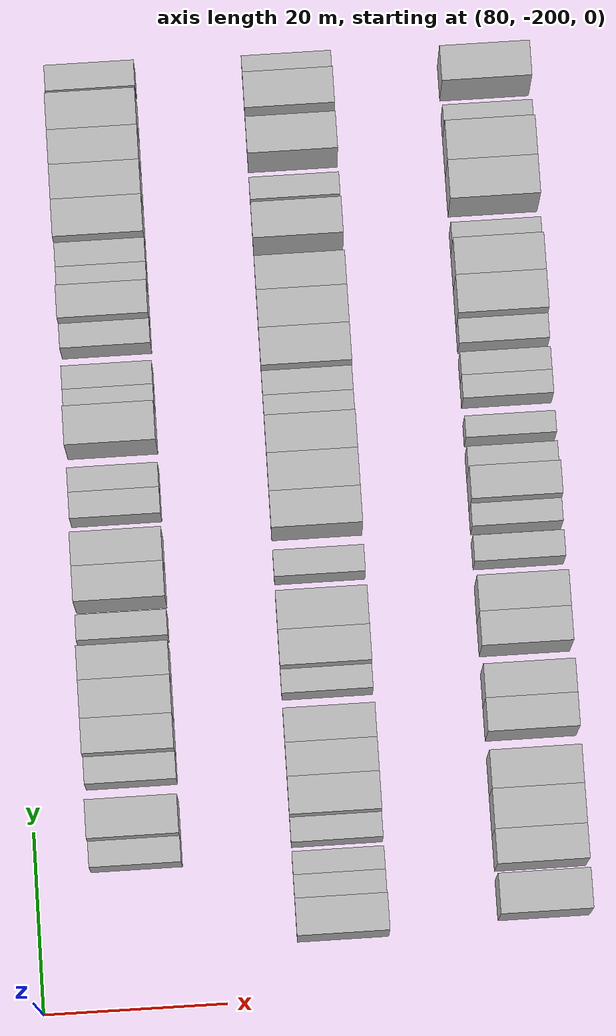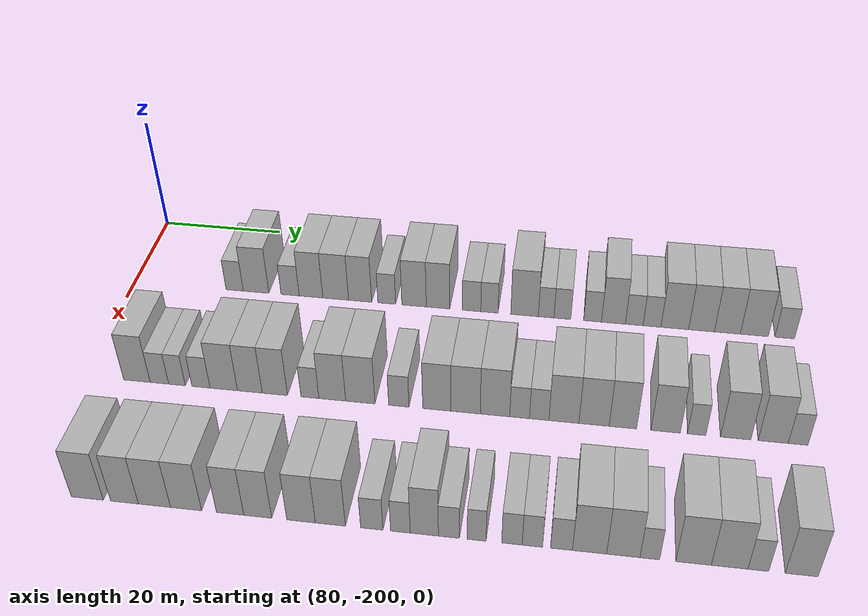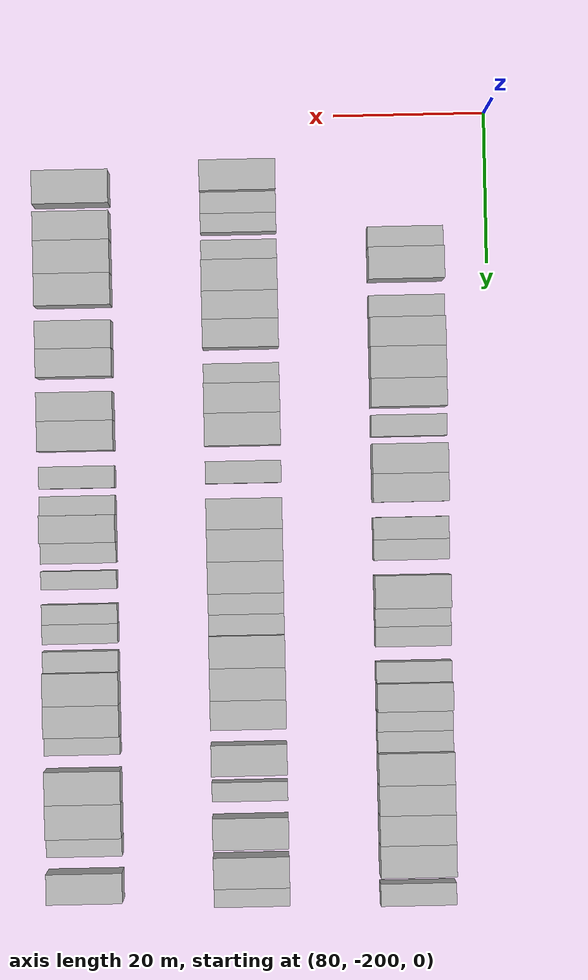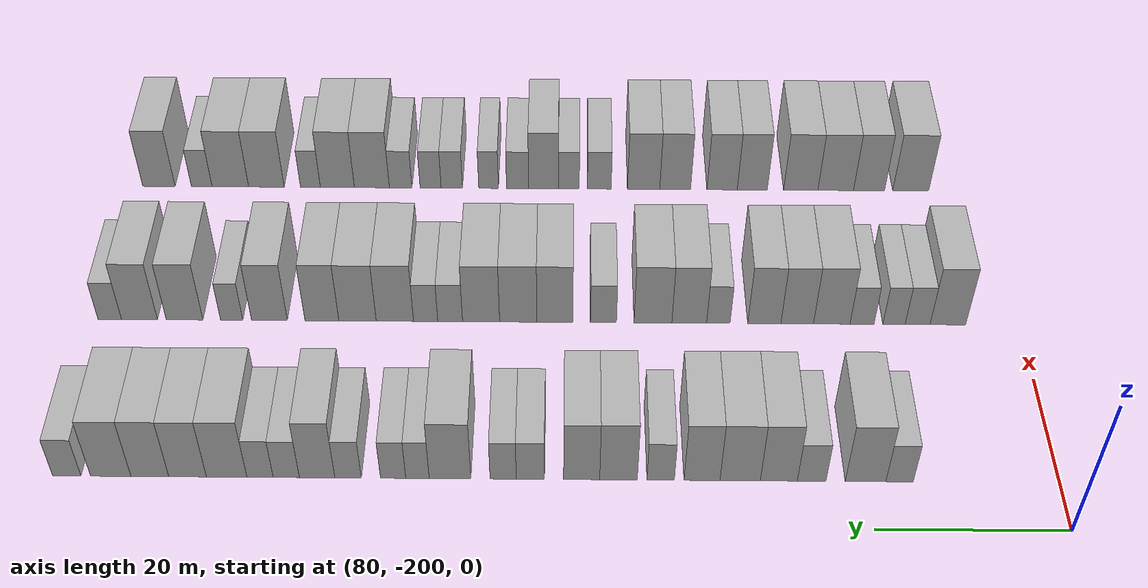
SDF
<sdf version="1.6">
 <world name="default">
  <model name="building_606">
   <static>1</static>
   <pose>91.0000 -183.3609 0 0.000000 0.000000 0.000000</pose>
   <link name="link">
    <pose>0 0 3.00 0 0 0</pose>
    <collision name="collision"><geometry><box><size>10.0000 2.8439 6.0000</size></box></geometry></collision>
    <visual name="visual">
     <cast_shadows>0</cast_shadows>
     <geometry><box><size>10.0000 2.8439 6.0000</size></box></geometry>
     <material>
      <script>
       <uri>model://HANNAS_wall/materials/scripts</uri>
       <uri>model://HANNAS_wall/materials/textures</uri>
       <name>vrc/HANNAS_wall</name>
      </script>
     </material>
    </visual>
   </link>
  </model>
  <model name="building_607">
   <static>1</static>
   <pose>91.0000 -179.8262 0 0.000000 0.000000 0.000000</pose>
   <link name="link">
    <pose>0 0 4.50 0 0 0</pose>
    <collision name="collision"><geometry><box><size>10.0000 4.2256 9.0000</size></box></geometry></collision>
    <visual name="visual">
     <cast_shadows>0</cast_shadows>
     <geometry><box><size>10.0000 4.2256 9.0000</size></box></geometry>
     <material>
      <script>
       <uri>model://HANNAS_wall/materials/scripts</uri>
       <uri>model://HANNAS_wall/materials/textures</uri>
       <name>vrc/HANNAS_wall</name>
      </script>
     </material>
    </visual>
   </link>
  </model>
  <model name="building_608">
   <static>1</static>
   <pose>91.0000 -174.2258 0 0.000000 0.000000 0.000000</pose>
   <link name="link">
    <pose>0 0 3.00 0 0 0</pose>
    <collision name="collision"><geometry><box><size>10.0000 2.9751 6.0000</size></box></geometry></collision>
    <visual name="visual">
     <cast_shadows>0</cast_shadows>
     <geometry><box><size>10.0000 2.9751 6.0000</size></box></geometry>
     <material>
      <script>
       <uri>model://HANNAS_wall/materials/scripts</uri>
       <uri>model://HANNAS_wall/materials/textures</uri>
       <name>vrc/HANNAS_wall</name>
      </script>
     </material>
    </visual>
   </link>
  </model>
  <model name="building_609">
   <static>1</static>
   <pose>91.0000 -170.8117 0 0.000000 0.000000 0.000000</pose>
   <link name="link">
    <pose>0 0 4.50 0 0 0</pose>
    <collision name="collision"><geometry><box><size>10.0000 3.8531 9.0000</size></box></geometry></collision>
    <visual name="visual">
     <cast_shadows>0</cast_shadows>
     <geometry><box><size>10.0000 3.8531 9.0000</size></box></geometry>
     <material>
      <script>
       <uri>model://HANNAS_wall/materials/scripts</uri>
       <uri>model://HANNAS_wall/materials/textures</uri>
       <name>vrc/HANNAS_wall</name>
      </script>
     </material>
    </visual>
   </link>
  </model>
  <model name="building_610">
   <static>1</static>
   <pose>91.0000 -166.7874 0 0.000000 0.000000 0.000000</pose>
   <link name="link">
    <pose>0 0 4.50 0 0 0</pose>
    <collision name="collision"><geometry><box><size>10.0000 4.1956 9.0000</size></box></geometry></collision>
    <visual name="visual">
     <cast_shadows>0</cast_shadows>
     <geometry><box><size>10.0000 4.1956 9.0000</size></box></geometry>
     <material>
      <script>
       <uri>model://HANNAS_wall/materials/scripts</uri>
       <uri>model://HANNAS_wall/materials/textures</uri>
       <name>vrc/HANNAS_wall</name>
      </script>
     </material>
    </visual>
   </link>
  </model>
  <model name="building_611">
   <static>1</static>
   <pose>91.0000 -162.8176 0 0.000000 0.000000 0.000000</pose>
   <link name="link">
    <pose>0 0 4.50 0 0 0</pose>
    <collision name="collision"><geometry><box><size>10.0000 3.7439 9.0000</size></box></geometry></collision>
    <visual name="visual">
     <cast_shadows>0</cast_shadows>
     <geometry><box><size>10.0000 3.7439 9.0000</size></box></geometry>
     <material>
      <script>
       <uri>model://HANNAS_wall/materials/scripts</uri>
       <uri>model://HANNAS_wall/materials/textures</uri>
       <name>vrc/HANNAS_wall</name>
      </script>
     </material>
    </visual>
   </link>
  </model>
  <model name="building_612">
   <static>1</static>
   <pose>91.0000 -158.5176 0 0.000000 0.000000 0.000000</pose>
   <link name="link">
    <pose>0 0 3.00 0 0 0</pose>
    <collision name="collision"><geometry><box><size>10.0000 2.8561 6.0000</size></box></geometry></collision>
    <visual name="visual">
     <cast_shadows>0</cast_shadows>
     <geometry><box><size>10.0000 2.8561 6.0000</size></box></geometry>
     <material>
      <script>
       <uri>model://HANNAS_wall/materials/scripts</uri>
       <uri>model://HANNAS_wall/materials/textures</uri>
       <name>vrc/HANNAS_wall</name>
      </script>
     </material>
    </visual>
   </link>
  </model>
  <model name="building_613">
   <static>1</static>
   <pose>91.0000 -154.1319 0 0.000000 0.000000 0.000000</pose>
   <link name="link">
    <pose>0 0 4.50 0 0 0</pose>
    <collision name="collision"><geometry><box><size>10.0000 3.9152 9.0000</size></box></geometry></collision>
    <visual name="visual">
     <cast_shadows>0</cast_shadows>
     <geometry><box><size>10.0000 3.9152 9.0000</size></box></geometry>
     <material>
      <script>
       <uri>model://HANNAS_wall/materials/scripts</uri>
       <uri>model://HANNAS_wall/materials/textures</uri>
       <name>vrc/HANNAS_wall</name>
      </script>
     </material>
    </visual>
   </link>
  </model>
  <model name="building_614">
   <static>1</static>
   <pose>91.0000 -150.2973 0 0.000000 0.000000 0.000000</pose>
   <link name="link">
    <pose>0 0 4.50 0 0 0</pose>
    <collision name="collision"><geometry><box><size>10.0000 3.7541 9.0000</size></box></geometry></collision>
    <visual name="visual">
     <cast_shadows>0</cast_shadows>
     <geometry><box><size>10.0000 3.7541 9.0000</size></box></geometry>
     <material>
      <script>
       <uri>model://HANNAS_wall/materials/scripts</uri>
       <uri>model://HANNAS_wall/materials/textures</uri>
       <name>vrc/HANNAS_wall</name>
      </script>
     </material>
    </visual>
   </link>
  </model>
  <model name="building_615">
   <static>1</static>
   <pose>91.0000 -144.9537 0 0.000000 0.000000 0.000000</pose>
   <link name="link">
    <pose>0 0 3.00 0 0 0</pose>
    <collision name="collision"><geometry><box><size>10.0000 2.9332 6.0000</size></box></geometry></collision>
    <visual name="visual">
     <cast_shadows>0</cast_shadows>
     <geometry><box><size>10.0000 2.9332 6.0000</size></box></geometry>
     <material>
      <script>
       <uri>model://HANNAS_wall/materials/scripts</uri>
       <uri>model://HANNAS_wall/materials/textures</uri>
       <name>vrc/HANNAS_wall</name>
      </script>
     </material>
    </visual>
   </link>
  </model>
  <model name="building_616">
   <static>1</static>
   <pose>91.0000 -142.1236 0 0.000000 0.000000 0.000000</pose>
   <link name="link">
    <pose>0 0 3.00 0 0 0</pose>
    <collision name="collision"><geometry><box><size>10.0000 2.7269 6.0000</size></box></geometry></collision>
    <visual name="visual">
     <cast_shadows>0</cast_shadows>
     <geometry><box><size>10.0000 2.7269 6.0000</size></box></geometry>
     <material>
      <script>
       <uri>model://HANNAS_wall/materials/scripts</uri>
       <uri>model://HANNAS_wall/materials/textures</uri>
       <name>vrc/HANNAS_wall</name>
      </script>
     </material>
    </visual>
   </link>
  </model>
  <model name="building_617">
   <static>1</static>
   <pose>91.0000 -136.5893 0 0.000000 0.000000 0.000000</pose>
   <link name="link">
    <pose>0 0 4.50 0 0 0</pose>
    <collision name="collision"><geometry><box><size>10.0000 4.3417 9.0000</size></box></geometry></collision>
    <visual name="visual">
     <cast_shadows>0</cast_shadows>
     <geometry><box><size>10.0000 4.3417 9.0000</size></box></geometry>
     <material>
      <script>
       <uri>model://HANNAS_wall/materials/scripts</uri>
       <uri>model://HANNAS_wall/materials/textures</uri>
       <name>vrc/HANNAS_wall</name>
      </script>
     </material>
    </visual>
   </link>
  </model>
  <model name="building_618">
   <static>1</static>
   <pose>91.0000 -133.1951 0 0.000000 0.000000 0.000000</pose>
   <link name="link">
    <pose>0 0 3.00 0 0 0</pose>
    <collision name="collision"><geometry><box><size>10.0000 2.4466 6.0000</size></box></geometry></collision>
    <visual name="visual">
     <cast_shadows>0</cast_shadows>
     <geometry><box><size>10.0000 2.4466 6.0000</size></box></geometry>
     <material>
      <script>
       <uri>model://HANNAS_wall/materials/scripts</uri>
       <uri>model://HANNAS_wall/materials/textures</uri>
       <name>vrc/HANNAS_wall</name>
      </script>
     </material>
    </visual>
   </link>
  </model>
  <model name="building_619">
   <static>1</static>
   <pose>91.0000 -130.6560 0 0.000000 0.000000 0.000000</pose>
   <link name="link">
    <pose>0 0 3.00 0 0 0</pose>
    <collision name="collision"><geometry><box><size>10.0000 2.6316 6.0000</size></box></geometry></collision>
    <visual name="visual">
     <cast_shadows>0</cast_shadows>
     <geometry><box><size>10.0000 2.6316 6.0000</size></box></geometry>
     <material>
      <script>
       <uri>model://HANNAS_wall/materials/scripts</uri>
       <uri>model://HANNAS_wall/materials/textures</uri>
       <name>vrc/HANNAS_wall</name>
      </script>
     </material>
    </visual>
   </link>
  </model>
  <model name="building_620">
   <static>1</static>
   <pose>91.0000 -125.9577 0 0.000000 0.000000 0.000000</pose>
   <link name="link">
    <pose>0 0 3.00 0 0 0</pose>
    <collision name="collision"><geometry><box><size>10.0000 2.7650 6.0000</size></box></geometry></collision>
    <visual name="visual">
     <cast_shadows>0</cast_shadows>
     <geometry><box><size>10.0000 2.7650 6.0000</size></box></geometry>
     <material>
      <script>
       <uri>model://HANNAS_wall/materials/scripts</uri>
       <uri>model://HANNAS_wall/materials/textures</uri>
       <name>vrc/HANNAS_wall</name>
      </script>
     </material>
    </visual>
   </link>
  </model>
  <model name="building_621">
   <static>1</static>
   <pose>91.0000 -122.7253 0 0.000000 0.000000 0.000000</pose>
   <link name="link">
    <pose>0 0 4.50 0 0 0</pose>
    <collision name="collision"><geometry><box><size>10.0000 3.6997 9.0000</size></box></geometry></collision>
    <visual name="visual">
     <cast_shadows>0</cast_shadows>
     <geometry><box><size>10.0000 3.6997 9.0000</size></box></geometry>
     <material>
      <script>
       <uri>model://HANNAS_wall/materials/scripts</uri>
       <uri>model://HANNAS_wall/materials/textures</uri>
       <name>vrc/HANNAS_wall</name>
      </script>
     </material>
    </visual>
   </link>
  </model>
  <model name="building_622">
   <static>1</static>
   <pose>91.0000 -119.5095 0 0.000000 0.000000 0.000000</pose>
   <link name="link">
    <pose>0 0 3.00 0 0 0</pose>
    <collision name="collision"><geometry><box><size>10.0000 2.7318 6.0000</size></box></geometry></collision>
    <visual name="visual">
     <cast_shadows>0</cast_shadows>
     <geometry><box><size>10.0000 2.7318 6.0000</size></box></geometry>
     <material>
      <script>
       <uri>model://HANNAS_wall/materials/scripts</uri>
       <uri>model://HANNAS_wall/materials/textures</uri>
       <name>vrc/HANNAS_wall</name>
      </script>
     </material>
    </visual>
   </link>
  </model>
  <model name="building_623">
   <static>1</static>
   <pose>91.0000 -116.7729 0 0.000000 0.000000 0.000000</pose>
   <link name="link">
    <pose>0 0 3.00 0 0 0</pose>
    <collision name="collision"><geometry><box><size>10.0000 2.7415 6.0000</size></box></geometry></collision>
    <visual name="visual">
     <cast_shadows>0</cast_shadows>
     <geometry><box><size>10.0000 2.7415 6.0000</size></box></geometry>
     <material>
      <script>
       <uri>model://HANNAS_wall/materials/scripts</uri>
       <uri>model://HANNAS_wall/materials/textures</uri>
       <name>vrc/HANNAS_wall</name>
      </script>
     </material>
    </visual>
   </link>
  </model>
  <model name="building_624">
   <static>1</static>
   <pose>91.0000 -113.2893 0 0.000000 0.000000 0.000000</pose>
   <link name="link">
    <pose>0 0 4.50 0 0 0</pose>
    <collision name="collision"><geometry><box><size>10.0000 4.2257 9.0000</size></box></geometry></collision>
    <visual name="visual">
     <cast_shadows>0</cast_shadows>
     <geometry><box><size>10.0000 4.2257 9.0000</size></box></geometry>
     <material>
      <script>
       <uri>model://HANNAS_wall/materials/scripts</uri>
       <uri>model://HANNAS_wall/materials/textures</uri>
       <name>vrc/HANNAS_wall</name>
      </script>
     </material>
    </visual>
   </link>
  </model>
  <model name="building_625">
   <static>1</static>
   <pose>91.0000 -109.2074 0 0.000000 0.000000 0.000000</pose>
   <link name="link">
    <pose>0 0 4.50 0 0 0</pose>
    <collision name="collision"><geometry><box><size>10.0000 3.9381 9.0000</size></box></geometry></collision>
    <visual name="visual">
     <cast_shadows>0</cast_shadows>
     <geometry><box><size>10.0000 3.9381 9.0000</size></box></geometry>
     <material>
      <script>
       <uri>model://HANNAS_wall/materials/scripts</uri>
       <uri>model://HANNAS_wall/materials/textures</uri>
       <name>vrc/HANNAS_wall</name>
      </script>
     </material>
    </visual>
   </link>
  </model>
  <model name="building_626">
   <static>1</static>
   <pose>91.0000 -105.2650 0 0.000000 0.000000 0.000000</pose>
   <link name="link">
    <pose>0 0 4.50 0 0 0</pose>
    <collision name="collision"><geometry><box><size>10.0000 3.9467 9.0000</size></box></geometry></collision>
    <visual name="visual">
     <cast_shadows>0</cast_shadows>
     <geometry><box><size>10.0000 3.9467 9.0000</size></box></geometry>
     <material>
      <script>
       <uri>model://HANNAS_wall/materials/scripts</uri>
       <uri>model://HANNAS_wall/materials/textures</uri>
       <name>vrc/HANNAS_wall</name>
      </script>
     </material>
    </visual>
   </link>
  </model>
  <model name="building_627">
   <static>1</static>
   <pose>91.0000 -101.1831 0 0.000000 0.000000 0.000000</pose>
   <link name="link">
    <pose>0 0 4.50 0 0 0</pose>
    <collision name="collision"><geometry><box><size>10.0000 4.2170 9.0000</size></box></geometry></collision>
    <visual name="visual">
     <cast_shadows>0</cast_shadows>
     <geometry><box><size>10.0000 4.2170 9.0000</size></box></geometry>
     <material>
      <script>
       <uri>model://HANNAS_wall/materials/scripts</uri>
       <uri>model://HANNAS_wall/materials/textures</uri>
       <name>vrc/HANNAS_wall</name>
      </script>
     </material>
    </visual>
   </link>
  </model>
  <model name="building_628">
   <static>1</static>
   <pose>91.0000 -96.5979 0 0.000000 0.000000 0.000000</pose>
   <link name="link">
    <pose>0 0 3.00 0 0 0</pose>
    <collision name="collision"><geometry><box><size>10.0000 2.9534 6.0000</size></box></geometry></collision>
    <visual name="visual">
     <cast_shadows>0</cast_shadows>
     <geometry><box><size>10.0000 2.9534 6.0000</size></box></geometry>
     <material>
      <script>
       <uri>model://HANNAS_wall/materials/scripts</uri>
       <uri>model://HANNAS_wall/materials/textures</uri>
       <name>vrc/HANNAS_wall</name>
      </script>
     </material>
    </visual>
   </link>
  </model>
  <model name="building_805">
   <static>1</static>
   <pose>113.0000 -191.7937 0 0.000000 0.000000 0.000000</pose>
   <link name="link">
    <pose>0 0 4.50 0 0 0</pose>
    <collision name="collision"><geometry><box><size>10.0000 4.0398 9.0000</size></box></geometry></collision>
    <visual name="visual">
     <cast_shadows>0</cast_shadows>
     <geometry><box><size>10.0000 4.0398 9.0000</size></box></geometry>
     <material>
      <script>
       <uri>model://HANNAS_wall/materials/scripts</uri>
       <uri>model://HANNAS_wall/materials/textures</uri>
       <name>vrc/HANNAS_wall</name>
      </script>
     </material>
    </visual>
   </link>
  </model>
  <model name="building_806">
   <static>1</static>
   <pose>113.0000 -188.3725 0 0.000000 0.000000 0.000000</pose>
   <link name="link">
    <pose>0 0 3.00 0 0 0</pose>
    <collision name="collision"><geometry><box><size>10.0000 2.8027 6.0000</size></box></geometry></collision>
    <visual name="visual">
     <cast_shadows>0</cast_shadows>
     <geometry><box><size>10.0000 2.8027 6.0000</size></box></geometry>
     <material>
      <script>
       <uri>model://HANNAS_wall/materials/scripts</uri>
       <uri>model://HANNAS_wall/materials/textures</uri>
       <name>vrc/HANNAS_wall</name>
      </script>
     </material>
    </visual>
   </link>
  </model>
  <model name="building_807">
   <static>1</static>
   <pose>113.0000 -185.7090 0 0.000000 0.000000 0.000000</pose>
   <link name="link">
    <pose>0 0 3.00 0 0 0</pose>
    <collision name="collision"><geometry><box><size>10.0000 2.5242 6.0000</size></box></geometry></collision>
    <visual name="visual">
     <cast_shadows>0</cast_shadows>
     <geometry><box><size>10.0000 2.5242 6.0000</size></box></geometry>
     <material>
      <script>
       <uri>model://HANNAS_wall/materials/scripts</uri>
       <uri>model://HANNAS_wall/materials/textures</uri>
       <name>vrc/HANNAS_wall</name>
      </script>
     </material>
    </visual>
   </link>
  </model>
  <model name="building_808">
   <static>1</static>
   <pose>113.0000 -182.0862 0 0.000000 0.000000 0.000000</pose>
   <link name="link">
    <pose>0 0 3.00 0 0 0</pose>
    <collision name="collision"><geometry><box><size>10.0000 2.7214 6.0000</size></box></geometry></collision>
    <visual name="visual">
     <cast_shadows>0</cast_shadows>
     <geometry><box><size>10.0000 2.7214 6.0000</size></box></geometry>
     <material>
      <script>
       <uri>model://HANNAS_wall/materials/scripts</uri>
       <uri>model://HANNAS_wall/materials/textures</uri>
       <name>vrc/HANNAS_wall</name>
      </script>
     </material>
    </visual>
   </link>
  </model>
  <model name="building_809">
   <static>1</static>
   <pose>113.0000 -178.6647 0 0.000000 0.000000 0.000000</pose>
   <link name="link">
    <pose>0 0 4.50 0 0 0</pose>
    <collision name="collision"><geometry><box><size>10.0000 4.1216 9.0000</size></box></geometry></collision>
    <visual name="visual">
     <cast_shadows>0</cast_shadows>
     <geometry><box><size>10.0000 4.1216 9.0000</size></box></geometry>
     <material>
      <script>
       <uri>model://HANNAS_wall/materials/scripts</uri>
       <uri>model://HANNAS_wall/materials/textures</uri>
       <name>vrc/HANNAS_wall</name>
      </script>
     </material>
    </visual>
   </link>
  </model>
  <model name="building_810">
   <static>1</static>
   <pose>113.0000 -174.7545 0 0.000000 0.000000 0.000000</pose>
   <link name="link">
    <pose>0 0 4.50 0 0 0</pose>
    <collision name="collision"><geometry><box><size>10.0000 3.6987 9.0000</size></box></geometry></collision>
    <visual name="visual">
     <cast_shadows>0</cast_shadows>
     <geometry><box><size>10.0000 3.6987 9.0000</size></box></geometry>
     <material>
      <script>
       <uri>model://HANNAS_wall/materials/scripts</uri>
       <uri>model://HANNAS_wall/materials/textures</uri>
       <name>vrc/HANNAS_wall</name>
      </script>
     </material>
    </visual>
   </link>
  </model>
  <model name="building_811">
   <static>1</static>
   <pose>113.0000 -171.0304 0 0.000000 0.000000 0.000000</pose>
   <link name="link">
    <pose>0 0 4.50 0 0 0</pose>
    <collision name="collision"><geometry><box><size>10.0000 3.7497 9.0000</size></box></geometry></collision>
    <visual name="visual">
     <cast_shadows>0</cast_shadows>
     <geometry><box><size>10.0000 3.7497 9.0000</size></box></geometry>
     <material>
      <script>
       <uri>model://HANNAS_wall/materials/scripts</uri>
       <uri>model://HANNAS_wall/materials/textures</uri>
       <name>vrc/HANNAS_wall</name>
      </script>
     </material>
    </visual>
   </link>
  </model>
  <model name="building_812">
   <static>1</static>
   <pose>113.0000 -165.8317 0 0.000000 0.000000 0.000000</pose>
   <link name="link">
    <pose>0 0 3.00 0 0 0</pose>
    <collision name="collision"><geometry><box><size>10.0000 2.6477 6.0000</size></box></geometry></collision>
    <visual name="visual">
     <cast_shadows>0</cast_shadows>
     <geometry><box><size>10.0000 2.6477 6.0000</size></box></geometry>
     <material>
      <script>
       <uri>model://HANNAS_wall/materials/scripts</uri>
       <uri>model://HANNAS_wall/materials/textures</uri>
       <name>vrc/HANNAS_wall</name>
      </script>
     </material>
    </visual>
   </link>
  </model>
  <model name="building_813">
   <static>1</static>
   <pose>113.0000 -162.5360 0 0.000000 0.000000 0.000000</pose>
   <link name="link">
    <pose>0 0 4.50 0 0 0</pose>
    <collision name="collision"><geometry><box><size>10.0000 3.9438 9.0000</size></box></geometry></collision>
    <visual name="visual">
     <cast_shadows>0</cast_shadows>
     <geometry><box><size>10.0000 3.9438 9.0000</size></box></geometry>
     <material>
      <script>
       <uri>model://HANNAS_wall/materials/scripts</uri>
       <uri>model://HANNAS_wall/materials/textures</uri>
       <name>vrc/HANNAS_wall</name>
      </script>
     </material>
    </visual>
   </link>
  </model>
  <model name="building_814">
   <static>1</static>
   <pose>113.0000 -158.4195 0 0.000000 0.000000 0.000000</pose>
   <link name="link">
    <pose>0 0 4.50 0 0 0</pose>
    <collision name="collision"><geometry><box><size>10.0000 4.2893 9.0000</size></box></geometry></collision>
    <visual name="visual">
     <cast_shadows>0</cast_shadows>
     <geometry><box><size>10.0000 4.2893 9.0000</size></box></geometry>
     <material>
      <script>
       <uri>model://HANNAS_wall/materials/scripts</uri>
       <uri>model://HANNAS_wall/materials/textures</uri>
       <name>vrc/HANNAS_wall</name>
      </script>
     </material>
    </visual>
   </link>
  </model>
  <model name="building_815">
   <static>1</static>
   <pose>113.0000 -152.8035 0 0.000000 0.000000 0.000000</pose>
   <link name="link">
    <pose>0 0 3.00 0 0 0</pose>
    <collision name="collision"><geometry><box><size>10.0000 2.9426 6.0000</size></box></geometry></collision>
    <visual name="visual">
     <cast_shadows>0</cast_shadows>
     <geometry><box><size>10.0000 2.9426 6.0000</size></box></geometry>
     <material>
      <script>
       <uri>model://HANNAS_wall/materials/scripts</uri>
       <uri>model://HANNAS_wall/materials/textures</uri>
       <name>vrc/HANNAS_wall</name>
      </script>
     </material>
    </visual>
   </link>
  </model>
  <model name="building_816">
   <static>1</static>
   <pose>113.0000 -147.3011 0 0.000000 0.000000 0.000000</pose>
   <link name="link">
    <pose>0 0 4.50 0 0 0</pose>
    <collision name="collision"><geometry><box><size>10.0000 4.0622 9.0000</size></box></geometry></collision>
    <visual name="visual">
     <cast_shadows>0</cast_shadows>
     <geometry><box><size>10.0000 4.0622 9.0000</size></box></geometry>
     <material>
      <script>
       <uri>model://HANNAS_wall/materials/scripts</uri>
       <uri>model://HANNAS_wall/materials/textures</uri>
       <name>vrc/HANNAS_wall</name>
      </script>
     </material>
    </visual>
   </link>
  </model>
  <model name="building_817">
   <static>1</static>
   <pose>113.0000 -143.1564 0 0.000000 0.000000 0.000000</pose>
   <link name="link">
    <pose>0 0 4.50 0 0 0</pose>
    <collision name="collision"><geometry><box><size>10.0000 4.2273 9.0000</size></box></geometry></collision>
    <visual name="visual">
     <cast_shadows>0</cast_shadows>
     <geometry><box><size>10.0000 4.2273 9.0000</size></box></geometry>
     <material>
      <script>
       <uri>model://HANNAS_wall/materials/scripts</uri>
       <uri>model://HANNAS_wall/materials/textures</uri>
       <name>vrc/HANNAS_wall</name>
      </script>
     </material>
    </visual>
   </link>
  </model>
  <model name="building_818">
   <static>1</static>
   <pose>113.0000 -138.9404 0 0.000000 0.000000 0.000000</pose>
   <link name="link">
    <pose>0 0 4.50 0 0 0</pose>
    <collision name="collision"><geometry><box><size>10.0000 4.2047 9.0000</size></box></geometry></collision>
    <visual name="visual">
     <cast_shadows>0</cast_shadows>
     <geometry><box><size>10.0000 4.2047 9.0000</size></box></geometry>
     <material>
      <script>
       <uri>model://HANNAS_wall/materials/scripts</uri>
       <uri>model://HANNAS_wall/materials/textures</uri>
       <name>vrc/HANNAS_wall</name>
      </script>
     </material>
    </visual>
   </link>
  </model>
  <model name="building_819">
   <static>1</static>
   <pose>113.0000 -135.4325 0 0.000000 0.000000 0.000000</pose>
   <link name="link">
    <pose>0 0 3.00 0 0 0</pose>
    <collision name="collision"><geometry><box><size>10.0000 2.8112 6.0000</size></box></geometry></collision>
    <visual name="visual">
     <cast_shadows>0</cast_shadows>
     <geometry><box><size>10.0000 2.8112 6.0000</size></box></geometry>
     <material>
      <script>
       <uri>model://HANNAS_wall/materials/scripts</uri>
       <uri>model://HANNAS_wall/materials/textures</uri>
       <name>vrc/HANNAS_wall</name>
      </script>
     </material>
    </visual>
   </link>
  </model>
  <model name="building_820">
   <static>1</static>
   <pose>113.0000 -132.6540 0 0.000000 0.000000 0.000000</pose>
   <link name="link">
    <pose>0 0 3.00 0 0 0</pose>
    <collision name="collision"><geometry><box><size>10.0000 2.7458 6.0000</size></box></geometry></collision>
    <visual name="visual">
     <cast_shadows>0</cast_shadows>
     <geometry><box><size>10.0000 2.7458 6.0000</size></box></geometry>
     <material>
      <script>
       <uri>model://HANNAS_wall/materials/scripts</uri>
       <uri>model://HANNAS_wall/materials/textures</uri>
       <name>vrc/HANNAS_wall</name>
      </script>
     </material>
    </visual>
   </link>
  </model>
  <model name="building_821">
   <static>1</static>
   <pose>113.0000 -129.1619 0 0.000000 0.000000 0.000000</pose>
   <link name="link">
    <pose>0 0 4.50 0 0 0</pose>
    <collision name="collision"><geometry><box><size>10.0000 4.2384 9.0000</size></box></geometry></collision>
    <visual name="visual">
     <cast_shadows>0</cast_shadows>
     <geometry><box><size>10.0000 4.2384 9.0000</size></box></geometry>
     <material>
      <script>
       <uri>model://HANNAS_wall/materials/scripts</uri>
       <uri>model://HANNAS_wall/materials/textures</uri>
       <name>vrc/HANNAS_wall</name>
      </script>
     </material>
    </visual>
   </link>
  </model>
  <model name="building_822">
   <static>1</static>
   <pose>113.0000 -124.9203 0 0.000000 0.000000 0.000000</pose>
   <link name="link">
    <pose>0 0 4.50 0 0 0</pose>
    <collision name="collision"><geometry><box><size>10.0000 4.2446 9.0000</size></box></geometry></collision>
    <visual name="visual">
     <cast_shadows>0</cast_shadows>
     <geometry><box><size>10.0000 4.2446 9.0000</size></box></geometry>
     <material>
      <script>
       <uri>model://HANNAS_wall/materials/scripts</uri>
       <uri>model://HANNAS_wall/materials/textures</uri>
       <name>vrc/HANNAS_wall</name>
      </script>
     </material>
    </visual>
   </link>
  </model>
  <model name="building_823">
   <static>1</static>
   <pose>113.0000 -120.8755 0 0.000000 0.000000 0.000000</pose>
   <link name="link">
    <pose>0 0 4.50 0 0 0</pose>
    <collision name="collision"><geometry><box><size>10.0000 3.8450 9.0000</size></box></geometry></collision>
    <visual name="visual">
     <cast_shadows>0</cast_shadows>
     <geometry><box><size>10.0000 3.8450 9.0000</size></box></geometry>
     <material>
      <script>
       <uri>model://HANNAS_wall/materials/scripts</uri>
       <uri>model://HANNAS_wall/materials/textures</uri>
       <name>vrc/HANNAS_wall</name>
      </script>
     </material>
    </visual>
   </link>
  </model>
  <model name="building_824">
   <static>1</static>
   <pose>113.0000 -114.9221 0 0.000000 0.000000 0.000000</pose>
   <link name="link">
    <pose>0 0 4.50 0 0 0</pose>
    <collision name="collision"><geometry><box><size>10.0000 4.0619 9.0000</size></box></geometry></collision>
    <visual name="visual">
     <cast_shadows>0</cast_shadows>
     <geometry><box><size>10.0000 4.0619 9.0000</size></box></geometry>
     <material>
      <script>
       <uri>model://HANNAS_wall/materials/scripts</uri>
       <uri>model://HANNAS_wall/materials/textures</uri>
       <name>vrc/HANNAS_wall</name>
      </script>
     </material>
    </visual>
   </link>
  </model>
  <model name="building_825">
   <static>1</static>
   <pose>113.0000 -110.6271 0 0.000000 0.000000 0.000000</pose>
   <link name="link">
    <pose>0 0 3.00 0 0 0</pose>
    <collision name="collision"><geometry><box><size>10.0000 2.5279 6.0000</size></box></geometry></collision>
    <visual name="visual">
     <cast_shadows>0</cast_shadows>
     <geometry><box><size>10.0000 2.5279 6.0000</size></box></geometry>
     <material>
      <script>
       <uri>model://HANNAS_wall/materials/scripts</uri>
       <uri>model://HANNAS_wall/materials/textures</uri>
       <name>vrc/HANNAS_wall</name>
      </script>
     </material>
    </visual>
   </link>
  </model>
  <model name="building_826">
   <static>1</static>
   <pose>113.0000 -105.2773 0 0.000000 0.000000 0.000000</pose>
   <link name="link">
    <pose>0 0 4.50 0 0 0</pose>
    <collision name="collision"><geometry><box><size>10.0000 4.1718 9.0000</size></box></geometry></collision>
    <visual name="visual">
     <cast_shadows>0</cast_shadows>
     <geometry><box><size>10.0000 4.1718 9.0000</size></box></geometry>
     <material>
      <script>
       <uri>model://HANNAS_wall/materials/scripts</uri>
       <uri>model://HANNAS_wall/materials/textures</uri>
       <name>vrc/HANNAS_wall</name>
      </script>
     </material>
    </visual>
   </link>
  </model>
  <model name="building_827">
   <static>1</static>
   <pose>113.0000 -100.1467 0 0.000000 0.000000 0.000000</pose>
   <link name="link">
    <pose>0 0 4.50 0 0 0</pose>
    <collision name="collision"><geometry><box><size>10.0000 4.0895 9.0000</size></box></geometry></collision>
    <visual name="visual">
     <cast_shadows>0</cast_shadows>
     <geometry><box><size>10.0000 4.0895 9.0000</size></box></geometry>
     <material>
      <script>
       <uri>model://HANNAS_wall/materials/scripts</uri>
       <uri>model://HANNAS_wall/materials/textures</uri>
       <name>vrc/HANNAS_wall</name>
      </script>
     </material>
    </visual>
   </link>
  </model>
  <model name="building_828">
   <static>1</static>
   <pose>113.0000 -96.7661 0 0.000000 0.000000 0.000000</pose>
   <link name="link">
    <pose>0 0 3.00 0 0 0</pose>
    <collision name="collision"><geometry><box><size>10.0000 2.6716 6.0000</size></box></geometry></collision>
    <visual name="visual">
     <cast_shadows>0</cast_shadows>
     <geometry><box><size>10.0000 2.6716 6.0000</size></box></geometry>
     <material>
      <script>
       <uri>model://HANNAS_wall/materials/scripts</uri>
       <uri>model://HANNAS_wall/materials/textures</uri>
       <name>vrc/HANNAS_wall</name>
      </script>
     </material>
    </visual>
   </link>
  </model>
  <model name="building_991">
   <static>1</static>
   <pose>135.0000 -190.6802 0 0.000000 0.000000 0.000000</pose>
   <link name="link">
    <pose>0 0 4.50 0 0 0</pose>
    <collision name="collision"><geometry><box><size>10.0000 4.3960 9.0000</size></box></geometry></collision>
    <visual name="visual">
     <cast_shadows>0</cast_shadows>
     <geometry><box><size>10.0000 4.3960 9.0000</size></box></geometry>
     <material>
      <script>
       <uri>model://HANNAS_wall/materials/scripts</uri>
       <uri>model://HANNAS_wall/materials/textures</uri>
       <name>vrc/HANNAS_wall</name>
      </script>
     </material>
    </visual>
   </link>
  </model>
  <model name="building_992">
   <static>1</static>
   <pose>135.0000 -185.5838 0 0.000000 0.000000 0.000000</pose>
   <link name="link">
    <pose>0 0 4.50 0 0 0</pose>
    <collision name="collision"><geometry><box><size>10.0000 3.7968 9.0000</size></box></geometry></collision>
    <visual name="visual">
     <cast_shadows>0</cast_shadows>
     <geometry><box><size>10.0000 3.7968 9.0000</size></box></geometry>
     <material>
      <script>
       <uri>model://HANNAS_wall/materials/scripts</uri>
       <uri>model://HANNAS_wall/materials/textures</uri>
       <name>vrc/HANNAS_wall</name>
      </script>
     </material>
    </visual>
   </link>
  </model>
  <model name="building_993">
   <static>1</static>
   <pose>135.0000 -181.5042 0 0.000000 0.000000 0.000000</pose>
   <link name="link">
    <pose>0 0 4.50 0 0 0</pose>
    <collision name="collision"><geometry><box><size>10.0000 4.3625 9.0000</size></box></geometry></collision>
    <visual name="visual">
     <cast_shadows>0</cast_shadows>
     <geometry><box><size>10.0000 4.3625 9.0000</size></box></geometry>
     <material>
      <script>
       <uri>model://HANNAS_wall/materials/scripts</uri>
       <uri>model://HANNAS_wall/materials/textures</uri>
       <name>vrc/HANNAS_wall</name>
      </script>
     </material>
    </visual>
   </link>
  </model>
  <model name="building_994">
   <static>1</static>
   <pose>135.0000 -177.2248 0 0.000000 0.000000 0.000000</pose>
   <link name="link">
    <pose>0 0 4.50 0 0 0</pose>
    <collision name="collision"><geometry><box><size>10.0000 4.1963 9.0000</size></box></geometry></collision>
    <visual name="visual">
     <cast_shadows>0</cast_shadows>
     <geometry><box><size>10.0000 4.1963 9.0000</size></box></geometry>
     <material>
      <script>
       <uri>model://HANNAS_wall/materials/scripts</uri>
       <uri>model://HANNAS_wall/materials/textures</uri>
       <name>vrc/HANNAS_wall</name>
      </script>
     </material>
    </visual>
   </link>
  </model>
  <model name="building_995">
   <static>1</static>
   <pose>135.0000 -171.2878 0 0.000000 0.000000 0.000000</pose>
   <link name="link">
    <pose>0 0 4.50 0 0 0</pose>
    <collision name="collision"><geometry><box><size>10.0000 3.6777 9.0000</size></box></geometry></collision>
    <visual name="visual">
     <cast_shadows>0</cast_shadows>
     <geometry><box><size>10.0000 3.6777 9.0000</size></box></geometry>
     <material>
      <script>
       <uri>model://HANNAS_wall/materials/scripts</uri>
       <uri>model://HANNAS_wall/materials/textures</uri>
       <name>vrc/HANNAS_wall</name>
      </script>
     </material>
    </visual>
   </link>
  </model>
  <model name="building_996">
   <static>1</static>
   <pose>135.0000 -167.5913 0 0.000000 0.000000 0.000000</pose>
   <link name="link">
    <pose>0 0 4.50 0 0 0</pose>
    <collision name="collision"><geometry><box><size>10.0000 3.7154 9.0000</size></box></geometry></collision>
    <visual name="visual">
     <cast_shadows>0</cast_shadows>
     <geometry><box><size>10.0000 3.7154 9.0000</size></box></geometry>
     <material>
      <script>
       <uri>model://HANNAS_wall/materials/scripts</uri>
       <uri>model://HANNAS_wall/materials/textures</uri>
       <name>vrc/HANNAS_wall</name>
      </script>
     </material>
    </visual>
   </link>
  </model>
  <model name="building_997">
   <static>1</static>
   <pose>135.0000 -161.8458 0 0.000000 0.000000 0.000000</pose>
   <link name="link">
    <pose>0 0 4.50 0 0 0</pose>
    <collision name="collision"><geometry><box><size>10.0000 3.7755 9.0000</size></box></geometry></collision>
    <visual name="visual">
     <cast_shadows>0</cast_shadows>
     <geometry><box><size>10.0000 3.7755 9.0000</size></box></geometry>
     <material>
      <script>
       <uri>model://HANNAS_wall/materials/scripts</uri>
       <uri>model://HANNAS_wall/materials/textures</uri>
       <name>vrc/HANNAS_wall</name>
      </script>
     </material>
    </visual>
   </link>
  </model>
  <model name="building_998">
   <static>1</static>
   <pose>135.0000 -157.9795 0 0.000000 0.000000 0.000000</pose>
   <link name="link">
    <pose>0 0 4.50 0 0 0</pose>
    <collision name="collision"><geometry><box><size>10.0000 3.9572 9.0000</size></box></geometry></collision>
    <visual name="visual">
     <cast_shadows>0</cast_shadows>
     <geometry><box><size>10.0000 3.9572 9.0000</size></box></geometry>
     <material>
      <script>
       <uri>model://HANNAS_wall/materials/scripts</uri>
       <uri>model://HANNAS_wall/materials/textures</uri>
       <name>vrc/HANNAS_wall</name>
      </script>
     </material>
    </visual>
   </link>
  </model>
  <model name="building_999">
   <static>1</static>
   <pose>135.0000 -152.5447 0 0.000000 0.000000 0.000000</pose>
   <link name="link">
    <pose>0 0 3.00 0 0 0</pose>
    <collision name="collision"><geometry><box><size>10.0000 2.9123 6.0000</size></box></geometry></collision>
    <visual name="visual">
     <cast_shadows>0</cast_shadows>
     <geometry><box><size>10.0000 2.9123 6.0000</size></box></geometry>
     <material>
      <script>
       <uri>model://HANNAS_wall/materials/scripts</uri>
       <uri>model://HANNAS_wall/materials/textures</uri>
       <name>vrc/HANNAS_wall</name>
      </script>
     </material>
    </visual>
   </link>
  </model>
  <model name="building_1000">
   <static>1</static>
   <pose>135.0000 -148.8167 0 0.000000 0.000000 0.000000</pose>
   <link name="link">
    <pose>0 0 3.00 0 0 0</pose>
    <collision name="collision"><geometry><box><size>10.0000 2.5437 6.0000</size></box></geometry></collision>
    <visual name="visual">
     <cast_shadows>0</cast_shadows>
     <geometry><box><size>10.0000 2.5437 6.0000</size></box></geometry>
     <material>
      <script>
       <uri>model://HANNAS_wall/materials/scripts</uri>
       <uri>model://HANNAS_wall/materials/textures</uri>
       <name>vrc/HANNAS_wall</name>
      </script>
     </material>
    </visual>
   </link>
  </model>
  <model name="building_1001">
   <static>1</static>
   <pose>135.0000 -145.7237 0 0.000000 0.000000 0.000000</pose>
   <link name="link">
    <pose>0 0 4.50 0 0 0</pose>
    <collision name="collision"><geometry><box><size>10.0000 3.6424 9.0000</size></box></geometry></collision>
    <visual name="visual">
     <cast_shadows>0</cast_shadows>
     <geometry><box><size>10.0000 3.6424 9.0000</size></box></geometry>
     <material>
      <script>
       <uri>model://HANNAS_wall/materials/scripts</uri>
       <uri>model://HANNAS_wall/materials/textures</uri>
       <name>vrc/HANNAS_wall</name>
      </script>
     </material>
    </visual>
   </link>
  </model>
  <model name="building_1002">
   <static>1</static>
   <pose>135.0000 -142.5448 0 0.000000 0.000000 0.000000</pose>
   <link name="link">
    <pose>0 0 3.00 0 0 0</pose>
    <collision name="collision"><geometry><box><size>10.0000 2.7152 6.0000</size></box></geometry></collision>
    <visual name="visual">
     <cast_shadows>0</cast_shadows>
     <geometry><box><size>10.0000 2.7152 6.0000</size></box></geometry>
     <material>
      <script>
       <uri>model://HANNAS_wall/materials/scripts</uri>
       <uri>model://HANNAS_wall/materials/textures</uri>
       <name>vrc/HANNAS_wall</name>
      </script>
     </material>
    </visual>
   </link>
  </model>
  <model name="building_1003">
   <static>1</static>
   <pose>135.0000 -138.9829 0 0.000000 0.000000 0.000000</pose>
   <link name="link">
    <pose>0 0 3.00 0 0 0</pose>
    <collision name="collision"><geometry><box><size>10.0000 2.4087 6.0000</size></box></geometry></collision>
    <visual name="visual">
     <cast_shadows>0</cast_shadows>
     <geometry><box><size>10.0000 2.4087 6.0000</size></box></geometry>
     <material>
      <script>
       <uri>model://HANNAS_wall/materials/scripts</uri>
       <uri>model://HANNAS_wall/materials/textures</uri>
       <name>vrc/HANNAS_wall</name>
      </script>
     </material>
    </visual>
   </link>
  </model>
  <model name="building_1004">
   <static>1</static>
   <pose>135.0000 -134.4708 0 0.000000 0.000000 0.000000</pose>
   <link name="link">
    <pose>0 0 3.00 0 0 0</pose>
    <collision name="collision"><geometry><box><size>10.0000 2.6156 6.0000</size></box></geometry></collision>
    <visual name="visual">
     <cast_shadows>0</cast_shadows>
     <geometry><box><size>10.0000 2.6156 6.0000</size></box></geometry>
     <material>
      <script>
       <uri>model://HANNAS_wall/materials/scripts</uri>
       <uri>model://HANNAS_wall/materials/textures</uri>
       <name>vrc/HANNAS_wall</name>
      </script>
     </material>
    </visual>
   </link>
  </model>
  <model name="building_1005">
   <static>1</static>
   <pose>135.0000 -131.8718 0 0.000000 0.000000 0.000000</pose>
   <link name="link">
    <pose>0 0 3.00 0 0 0</pose>
    <collision name="collision"><geometry><box><size>10.0000 2.5824 6.0000</size></box></geometry></collision>
    <visual name="visual">
     <cast_shadows>0</cast_shadows>
     <geometry><box><size>10.0000 2.5824 6.0000</size></box></geometry>
     <material>
      <script>
       <uri>model://HANNAS_wall/materials/scripts</uri>
       <uri>model://HANNAS_wall/materials/textures</uri>
       <name>vrc/HANNAS_wall</name>
      </script>
     </material>
    </visual>
   </link>
  </model>
  <model name="building_1006">
   <static>1</static>
   <pose>135.0000 -128.1938 0 0.000000 0.000000 0.000000</pose>
   <link name="link">
    <pose>0 0 3.00 0 0 0</pose>
    <collision name="collision"><geometry><box><size>10.0000 2.7736 6.0000</size></box></geometry></collision>
    <visual name="visual">
     <cast_shadows>0</cast_shadows>
     <geometry><box><size>10.0000 2.7736 6.0000</size></box></geometry>
     <material>
      <script>
       <uri>model://HANNAS_wall/materials/scripts</uri>
       <uri>model://HANNAS_wall/materials/textures</uri>
       <name>vrc/HANNAS_wall</name>
      </script>
     </material>
    </visual>
   </link>
  </model>
  <model name="building_1007">
   <static>1</static>
   <pose>135.0000 -124.6579 0 0.000000 0.000000 0.000000</pose>
   <link name="link">
    <pose>0 0 4.50 0 0 0</pose>
    <collision name="collision"><geometry><box><size>10.0000 4.2982 9.0000</size></box></geometry></collision>
    <visual name="visual">
     <cast_shadows>0</cast_shadows>
     <geometry><box><size>10.0000 4.2982 9.0000</size></box></geometry>
     <material>
      <script>
       <uri>model://HANNAS_wall/materials/scripts</uri>
       <uri>model://HANNAS_wall/materials/textures</uri>
       <name>vrc/HANNAS_wall</name>
      </script>
     </material>
    </visual>
   </link>
  </model>
  <model name="building_1008">
   <static>1</static>
   <pose>135.0000 -120.4230 0 0.000000 0.000000 0.000000</pose>
   <link name="link">
    <pose>0 0 4.50 0 0 0</pose>
    <collision name="collision"><geometry><box><size>10.0000 4.1714 9.0000</size></box></geometry></collision>
    <visual name="visual">
     <cast_shadows>0</cast_shadows>
     <geometry><box><size>10.0000 4.1714 9.0000</size></box></geometry>
     <material>
      <script>
       <uri>model://HANNAS_wall/materials/scripts</uri>
       <uri>model://HANNAS_wall/materials/textures</uri>
       <name>vrc/HANNAS_wall</name>
      </script>
     </material>
    </visual>
   </link>
  </model>
  <model name="building_1009">
   <static>1</static>
   <pose>135.0000 -117.1186 0 0.000000 0.000000 0.000000</pose>
   <link name="link">
    <pose>0 0 3.00 0 0 0</pose>
    <collision name="collision"><geometry><box><size>10.0000 2.4374 6.0000</size></box></geometry></collision>
    <visual name="visual">
     <cast_shadows>0</cast_shadows>
     <geometry><box><size>10.0000 2.4374 6.0000</size></box></geometry>
     <material>
      <script>
       <uri>model://HANNAS_wall/materials/scripts</uri>
       <uri>model://HANNAS_wall/materials/textures</uri>
       <name>vrc/HANNAS_wall</name>
      </script>
     </material>
    </visual>
   </link>
  </model>
  <model name="building_1010">
   <static>1</static>
   <pose>135.0000 -111.7121 0 0.000000 0.000000 0.000000</pose>
   <link name="link">
    <pose>0 0 4.50 0 0 0</pose>
    <collision name="collision"><geometry><box><size>10.0000 4.3756 9.0000</size></box></geometry></collision>
    <visual name="visual">
     <cast_shadows>0</cast_shadows>
     <geometry><box><size>10.0000 4.3756 9.0000</size></box></geometry>
     <material>
      <script>
       <uri>model://HANNAS_wall/materials/scripts</uri>
       <uri>model://HANNAS_wall/materials/textures</uri>
       <name>vrc/HANNAS_wall</name>
      </script>
     </material>
    </visual>
   </link>
  </model>
  <model name="building_1011">
   <static>1</static>
   <pose>135.0000 -107.2765 0 0.000000 0.000000 0.000000</pose>
   <link name="link">
    <pose>0 0 4.50 0 0 0</pose>
    <collision name="collision"><geometry><box><size>10.0000 4.4957 9.0000</size></box></geometry></collision>
    <visual name="visual">
     <cast_shadows>0</cast_shadows>
     <geometry><box><size>10.0000 4.4957 9.0000</size></box></geometry>
     <material>
      <script>
       <uri>model://HANNAS_wall/materials/scripts</uri>
       <uri>model://HANNAS_wall/materials/textures</uri>
       <name>vrc/HANNAS_wall</name>
      </script>
     </material>
    </visual>
   </link>
  </model>
  <model name="building_1012">
   <static>1</static>
   <pose>135.0000 -103.7573 0 0.000000 0.000000 0.000000</pose>
   <link name="link">
    <pose>0 0 3.00 0 0 0</pose>
    <collision name="collision"><geometry><box><size>10.0000 2.5426 6.0000</size></box></geometry></collision>
    <visual name="visual">
     <cast_shadows>0</cast_shadows>
     <geometry><box><size>10.0000 2.5426 6.0000</size></box></geometry>
     <material>
      <script>
       <uri>model://HANNAS_wall/materials/scripts</uri>
       <uri>model://HANNAS_wall/materials/textures</uri>
       <name>vrc/HANNAS_wall</name>
      </script>
     </material>
    </visual>
   </link>
  </model>
  <model name="building_1013">
   <static>1</static>
   <pose>135.0000 -98.4960 0 0.000000 0.000000 0.000000</pose>
   <link name="link">
    <pose>0 0 4.50 0 0 0</pose>
    <collision name="collision"><geometry><box><size>10.0000 3.9802 9.0000</size></box></geometry></collision>
    <visual name="visual">
     <cast_shadows>0</cast_shadows>
     <geometry><box><size>10.0000 3.9802 9.0000</size></box></geometry>
     <material>
      <script>
       <uri>model://HANNAS_wall/materials/scripts</uri>
       <uri>model://HANNAS_wall/materials/textures</uri>
       <name>vrc/HANNAS_wall</name>
      </script>
     </material>
    </visual>
   </link>
  </model>
 </world>
</sdf>
